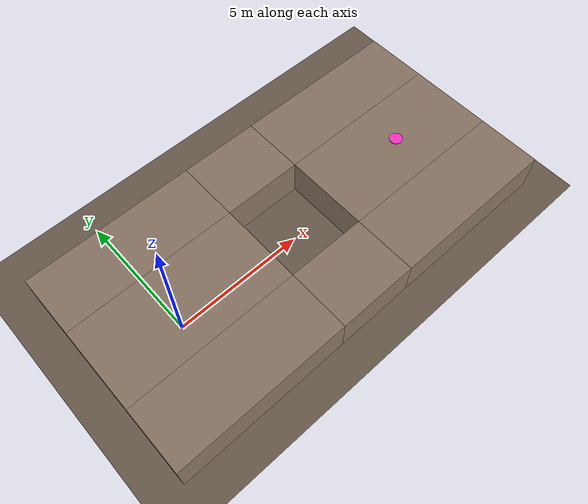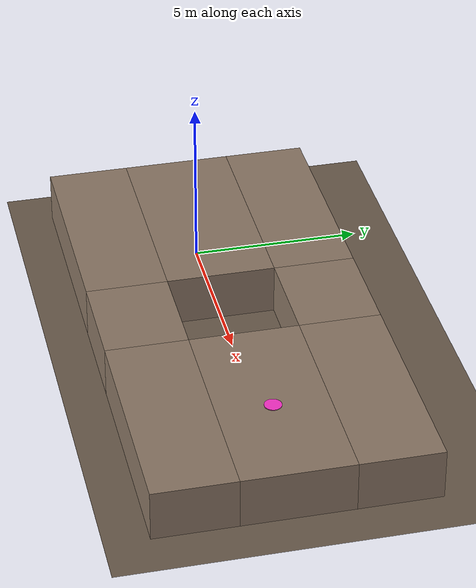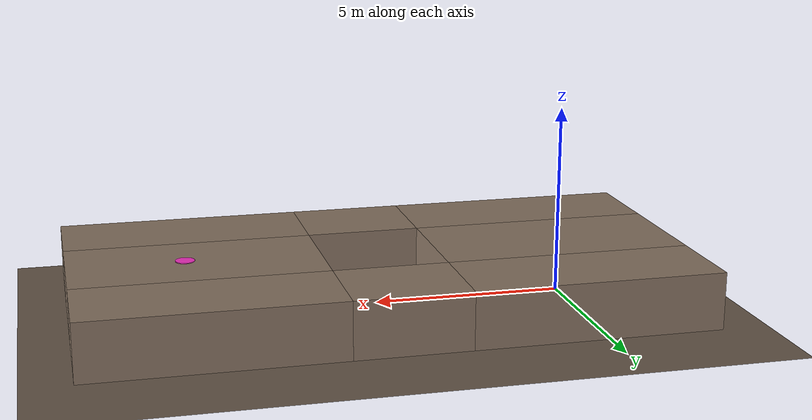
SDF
<?xml version="1.0"?>
<!-- GENERATED by scripts/make_test_worlds.py - scenario 'cliff_front': 1.5 m deep pit directly on the straight line: go around. -->
<sdf version="1.9">
  <world name="vigil_rock_terrain">
    <gravity>0 0 -9.81</gravity>
    <physics name="physics" type="ignored"><max_step_size>0.001</max_step_size><real_time_factor>1</real_time_factor></physics>
    <plugin filename="gz-sim-physics-system" name="gz::sim::systems::Physics"><engine><filename>gz-physics-dartsim-plugin</filename></engine></plugin>
    <plugin filename="gz-sim-contact-system" name="gz::sim::systems::Contact"/>
    <plugin filename="gz-sim-user-commands-system" name="gz::sim::systems::UserCommands"/>
    <plugin filename="gz-sim-scene-broadcaster-system" name="gz::sim::systems::SceneBroadcaster"/>
    <plugin filename="gz-sim-sensors-system" name="gz::sim::systems::Sensors"><render_engine>ogre2</render_engine></plugin>
    <plugin filename="gz-sim-imu-system" name="gz::sim::systems::Imu"/>
    <scene><ambient>0.5 0.5 0.5 1</ambient><background>0.70 0.80 0.90 1</background><shadows>true</shadows><grid>false</grid></scene>
    <light name="sun" type="directional"><pose>0 0 20 0 0 0</pose><cast_shadows>true</cast_shadows>
      <diffuse>0.85 0.85 0.85 1</diffuse><specular>0.15 0.15 0.15 1</specular><direction>-0.4 0.2 -0.9</direction></light>
    <model name="ground_plane"><static>true</static>
      <link name="link">
        <collision name="collision"><geometry><plane><normal>0 0 1</normal><size>80 80</size></plane></geometry>
          <surface><friction><ode><mu>1.0</mu><mu2>1.0</mu2></ode></friction></surface></collision>
        <visual name="visual"><geometry><plane><normal>0 0 1</normal><size>80 80</size></plane></geometry>
          <material><ambient>0.42 0.36 0.30 1</ambient><diffuse>0.42 0.36 0.30 1</diffuse></material></visual>
      </link>
      <plugin filename="gz-sim-label-system" name="gz::sim::systems::Label"><label>1</label></plugin>
    </model>
    <model name="block_0"><static>true</static><pose>0.2500 -2.8000 0.7500 0 0.000000 0</pose>
      <link name="link">
        <collision name="collision"><geometry><box><size>6.5000 2.4000 1.5000</size></box></geometry>
          <surface><friction><ode><mu>1.0</mu><mu2>1.0</mu2></ode></friction></surface></collision>
        <visual name="visual"><geometry><box><size>6.5000 2.4000 1.5000</size></box></geometry>
          <material><ambient>0.55 0.47 0.40 1</ambient><diffuse>0.55 0.47 0.40 1</diffuse></material></visual>
      </link>
      <plugin filename="gz-sim-label-system" name="gz::sim::systems::Label"><label>1</label></plugin>
    </model>
    <model name="block_1"><static>true</static><pose>0.2500 0.0000 0.7500 0 0.000000 0</pose>
      <link name="link">
        <collision name="collision"><geometry><box><size>6.5000 3.2000 1.5000</size></box></geometry>
          <surface><friction><ode><mu>1.0</mu><mu2>1.0</mu2></ode></friction></surface></collision>
        <visual name="visual"><geometry><box><size>6.5000 3.2000 1.5000</size></box></geometry>
          <material><ambient>0.55 0.47 0.40 1</ambient><diffuse>0.55 0.47 0.40 1</diffuse></material></visual>
      </link>
      <plugin filename="gz-sim-label-system" name="gz::sim::systems::Label"><label>1</label></plugin>
    </model>
    <model name="block_2"><static>true</static><pose>0.2500 2.8000 0.7500 0 0.000000 0</pose>
      <link name="link">
        <collision name="collision"><geometry><box><size>6.5000 2.4000 1.5000</size></box></geometry>
          <surface><friction><ode><mu>1.0</mu><mu2>1.0</mu2></ode></friction></surface></collision>
        <visual name="visual"><geometry><box><size>6.5000 2.4000 1.5000</size></box></geometry>
          <material><ambient>0.55 0.47 0.40 1</ambient><diffuse>0.55 0.47 0.40 1</diffuse></material></visual>
      </link>
      <plugin filename="gz-sim-label-system" name="gz::sim::systems::Label"><label>1</label></plugin>
    </model>
    <model name="block_3"><static>true</static><pose>5.0000 -2.8000 0.7500 0 0.000000 0</pose>
      <link name="link">
        <collision name="collision"><geometry><box><size>3.0000 2.4000 1.5000</size></box></geometry>
          <surface><friction><ode><mu>1.0</mu><mu2>1.0</mu2></ode></friction></surface></collision>
        <visual name="visual"><geometry><box><size>3.0000 2.4000 1.5000</size></box></geometry>
          <material><ambient>0.55 0.47 0.40 1</ambient><diffuse>0.55 0.47 0.40 1</diffuse></material></visual>
      </link>
      <plugin filename="gz-sim-label-system" name="gz::sim::systems::Label"><label>1</label></plugin>
    </model>
    <model name="block_4"><static>true</static><pose>5.0000 2.8000 0.7500 0 0.000000 0</pose>
      <link name="link">
        <collision name="collision"><geometry><box><size>3.0000 2.4000 1.5000</size></box></geometry>
          <surface><friction><ode><mu>1.0</mu><mu2>1.0</mu2></ode></friction></surface></collision>
        <visual name="visual"><geometry><box><size>3.0000 2.4000 1.5000</size></box></geometry>
          <material><ambient>0.55 0.47 0.40 1</ambient><diffuse>0.55 0.47 0.40 1</diffuse></material></visual>
      </link>
      <plugin filename="gz-sim-label-system" name="gz::sim::systems::Label"><label>1</label></plugin>
    </model>
    <model name="block_5"><static>true</static><pose>9.7500 -2.8000 0.7500 0 0.000000 0</pose>
      <link name="link">
        <collision name="collision"><geometry><box><size>6.5000 2.4000 1.5000</size></box></geometry>
          <surface><friction><ode><mu>1.0</mu><mu2>1.0</mu2></ode></friction></surface></collision>
        <visual name="visual"><geometry><box><size>6.5000 2.4000 1.5000</size></box></geometry>
          <material><ambient>0.55 0.47 0.40 1</ambient><diffuse>0.55 0.47 0.40 1</diffuse></material></visual>
      </link>
      <plugin filename="gz-sim-label-system" name="gz::sim::systems::Label"><label>1</label></plugin>
    </model>
    <model name="block_6"><static>true</static><pose>9.7500 0.0000 0.7500 0 0.000000 0</pose>
      <link name="link">
        <collision name="collision"><geometry><box><size>6.5000 3.2000 1.5000</size></box></geometry>
          <surface><friction><ode><mu>1.0</mu><mu2>1.0</mu2></ode></friction></surface></collision>
        <visual name="visual"><geometry><box><size>6.5000 3.2000 1.5000</size></box></geometry>
          <material><ambient>0.55 0.47 0.40 1</ambient><diffuse>0.55 0.47 0.40 1</diffuse></material></visual>
      </link>
      <plugin filename="gz-sim-label-system" name="gz::sim::systems::Label"><label>1</label></plugin>
    </model>
    <model name="block_7"><static>true</static><pose>9.7500 2.8000 0.7500 0 0.000000 0</pose>
      <link name="link">
        <collision name="collision"><geometry><box><size>6.5000 2.4000 1.5000</size></box></geometry>
          <surface><friction><ode><mu>1.0</mu><mu2>1.0</mu2></ode></friction></surface></collision>
        <visual name="visual"><geometry><box><size>6.5000 2.4000 1.5000</size></box></geometry>
          <material><ambient>0.55 0.47 0.40 1</ambient><diffuse>0.55 0.47 0.40 1</diffuse></material></visual>
      </link>
      <plugin filename="gz-sim-label-system" name="gz::sim::systems::Label"><label>1</label></plugin>
    </model>
    <!-- goal marker B (visual only) -->
    <model name="goal_B"><static>true</static><pose>10.0 0.0 1.520 0 0 0</pose>
      <link name="link"><visual name="v"><geometry><cylinder><radius>0.25</radius><length>0.02</length></cylinder></geometry>
        <material><ambient>1 0.2 0.8 1</ambient><diffuse>1 0.2 0.8 1</diffuse><emissive>0.6 0.1 0.5 1</emissive></material></visual></link>
    </model>
  </world>
</sdf>
